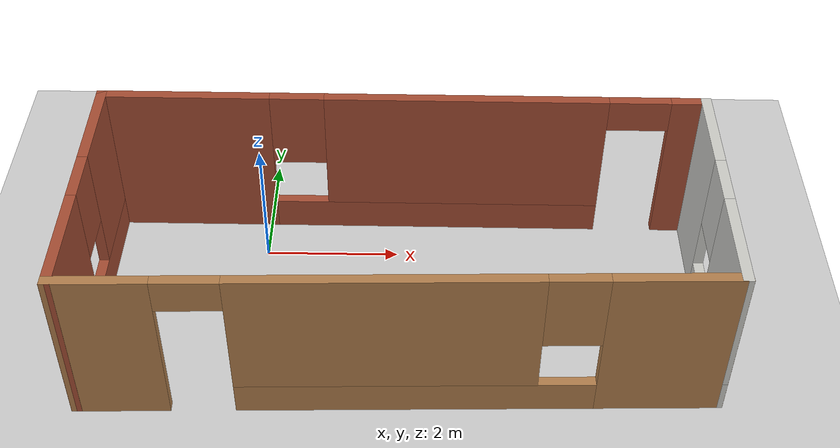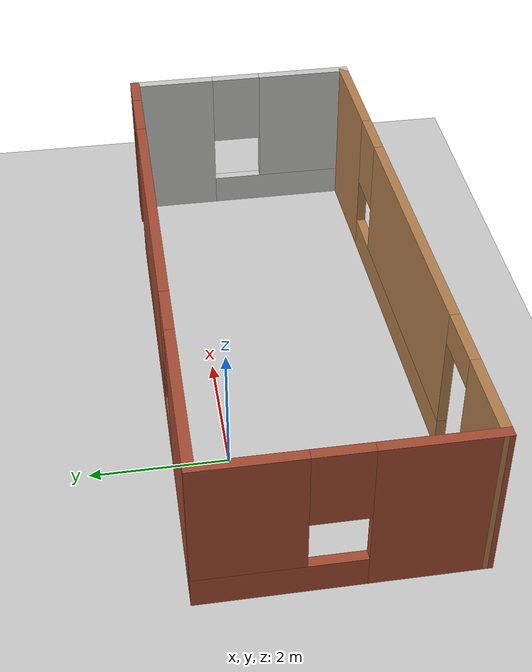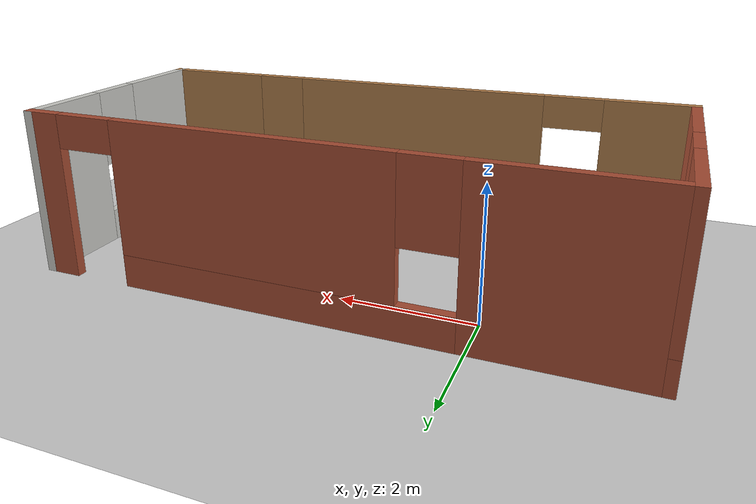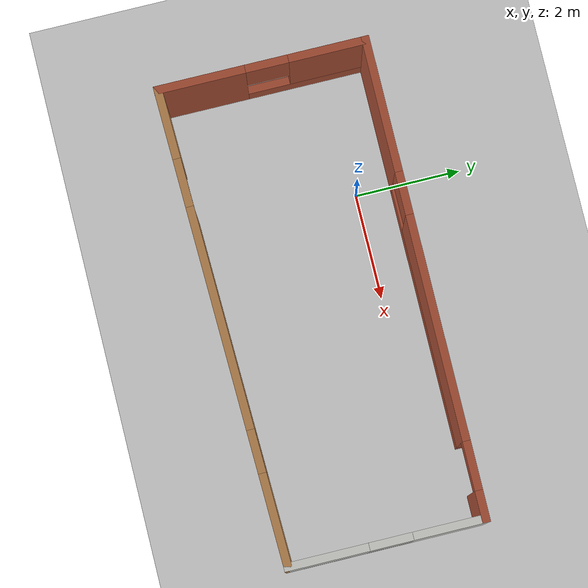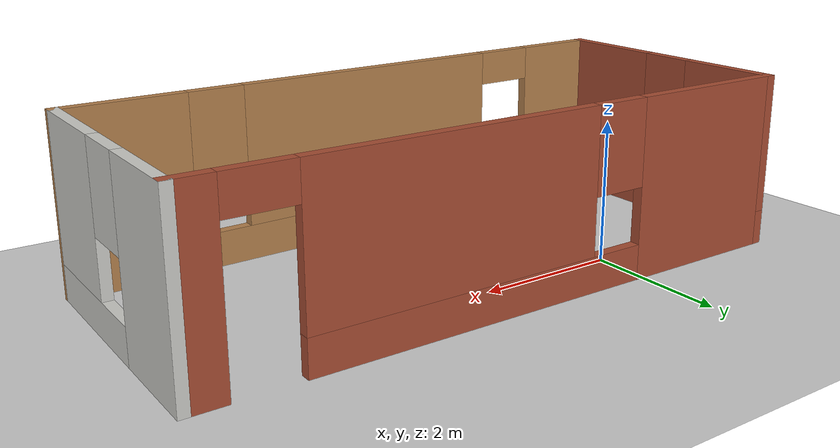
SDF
<sdf version="1.6">
 <world name="default">
  <light name="sun" type="directional">
   <pose>0 0 10 0 -0 0</pose>
   <diffuse>0.8 0.8 0.8 1</diffuse>
   <specular>0.1 0.1 0.1 1</specular>
   <attenuation>
    <range>1000</range>
    <constant>0.9</constant>
    <linear>0.01</linear>
    <quadratic>0.001</quadratic>
   </attenuation>
   <direction>-0.5 0.5 -1</direction>
  </light>
  <model name="ground_plane">
   <static>1</static>
   <link name="link">
    <collision name="collision">
     <geometry><plane><normal>0 0 1</normal><size>100 100</size></plane></geometry>
     <surface><friction><ode><mu>100</mu><mu2>50</mu2></ode></friction></surface>
    </collision>
    <visual name="visual">
     <cast_shadows>0</cast_shadows>
     <geometry><plane><normal>0 0 1</normal><size>100 100</size></plane></geometry>
     <material>
      <script><uri>file://media/materials/scripts/gazebo.material</uri><name>Gazebo/Grey</name></script>
     </material>
    </visual>
   </link>
  </model>
  <gravity>0 0 -9.8</gravity>
  <magnetic_field>6e-06 2.3e-05 -4.2e-05</magnetic_field>
  <atmosphere type="adiabatic"/>
  <physics name="default_physics" default="0" type="ode">
   <max_step_size>0.001</max_step_size>
   <real_time_factor>1</real_time_factor>
   <real_time_update_rate>1000</real_time_update_rate>
  </physics>
  <scene><ambient>0.4 0.4 0.4 1</ambient><background>0.7 0.7 0.7 1</background><shadows>1</shadows></scene>
  <spherical_coordinates>
   <surface_model>EARTH_WGS84</surface_model>
   <latitude_deg>0</latitude_deg>
   <longitude_deg>0</longitude_deg>
   <elevation>0</elevation>
   <heading_deg>0</heading_deg>
  </spherical_coordinates>
  <model name="my_world">
   <pose>2.06667 -1.19975 0 0 -0 0</pose>
   <link name="Wall_0">
    <pose>-4.425 0.001044 0 0 -0 1.5708</pose>
    <visual name="Wall_0_Visual_0">
     <pose>-1.1575 0 1.25 0 -0 0</pose>
     <geometry><box><size>1.685 0.15 2.5</size></box></geometry>
     <material>
      <script><uri>file://media/materials/scripts/gazebo.material</uri><name>Gazebo/Bricks</name></script>
      <ambient>1 1 1 1</ambient>
     </material>
    </visual>
    <collision name="Wall_0_Collision_0">
     <geometry><box><size>1.685 0.15 2.5</size></box></geometry>
     <pose>-1.1575 0 1.25 0 -0 0</pose>
    </collision>
    <visual name="Wall_0_Visual_1">
     <pose>0.8425 0 0.25 0 -0 0</pose>
     <geometry><box><size>2.315 0.15 0.5</size></box></geometry>
     <material>
      <script><uri>file://media/materials/scripts/gazebo.material</uri><name>Gazebo/Bricks</name></script>
      <ambient>1 1 1 1</ambient>
     </material>
    </visual>
    <collision name="Wall_0_Collision_1">
     <geometry><box><size>2.315 0.15 0.5</size></box></geometry>
     <pose>0.8425 0 0.25 0 -0 0</pose>
    </collision>
    <visual name="Wall_0_Visual_2">
     <pose>1.2425 0 1.5 0 -0 0</pose>
     <geometry><box><size>1.515 0.15 2</size></box></geometry>
     <material>
      <script><uri>file://media/materials/scripts/gazebo.material</uri><name>Gazebo/Bricks</name></script>
      <ambient>1 1 1 1</ambient>
     </material>
    </visual>
    <collision name="Wall_0_Collision_2">
     <geometry><box><size>1.515 0.15 2</size></box></geometry>
     <pose>1.2425 0 1.5 0 -0 0</pose>
    </collision>
    <visual name="Wall_0_Visual_3">
     <pose>0.085 0 1.9 0 -0 0</pose>
     <geometry><box><size>0.8 0.15 1.2</size></box></geometry>
     <material>
      <script><uri>file://media/materials/scripts/gazebo.material</uri><name>Gazebo/Bricks</name></script>
      <ambient>1 1 1 1</ambient>
     </material>
    </visual>
    <collision name="Wall_0_Collision_3">
     <geometry><box><size>0.8 0.15 1.2</size></box></geometry>
     <pose>0.085 0 1.9 0 -0 0</pose>
    </collision>
   </link>
   <link name="Wall_1">
    <pose>0 1.92604 0 0 -0 0</pose>
    <visual name="Wall_1_Visual_0">
     <pose>-3.2275 0 1.25 0 -0 0</pose>
     <geometry><box><size>2.545 0.15 2.5</size></box></geometry>
     <material>
      <script><uri>file://media/materials/scripts/gazebo.material</uri><name>Gazebo/Bricks</name></script>
      <ambient>0.996078 0.47451 0.0196078 1</ambient>
     </material>
    </visual>
    <collision name="Wall_1_Collision_0">
     <geometry><box><size>2.545 0.15 2.5</size></box></geometry>
     <pose>-3.2275 0 1.25 0 -0 0</pose>
    </collision>
    <visual name="Wall_1_Visual_1">
     <pose>4.2075 0 1.25 0 -0 0</pose>
     <geometry><box><size>0.585 0.15 2.5</size></box></geometry>
     <material>
      <script><uri>file://media/materials/scripts/gazebo.material</uri><name>Gazebo/Bricks</name></script>
      <ambient>0.996078 0.47451 0.0196078 1</ambient>
     </material>
    </visual>
    <collision name="Wall_1_Collision_1">
     <geometry><box><size>0.585 0.15 2.5</size></box></geometry>
     <pose>4.2075 0 1.25 0 -0 0</pose>
    </collision>
    <visual name="Wall_1_Visual_2">
     <pose>0.53 0 0.25 0 -0 0</pose>
     <geometry><box><size>4.97 0.15 0.5</size></box></geometry>
     <material>
      <script><uri>file://media/materials/scripts/gazebo.material</uri><name>Gazebo/Bricks</name></script>
      <ambient>0.996078 0.47451 0.0196078 1</ambient>
     </material>
    </visual>
    <collision name="Wall_1_Collision_2">
     <geometry><box><size>4.97 0.15 0.5</size></box></geometry>
     <pose>0.53 0 0.25 0 -0 0</pose>
    </collision>
    <visual name="Wall_1_Visual_3">
     <pose>0.93 0 1.5 0 -0 0</pose>
     <geometry><box><size>4.17 0.15 2</size></box></geometry>
     <material>
      <script><uri>file://media/materials/scripts/gazebo.material</uri><name>Gazebo/Bricks</name></script>
      <ambient>0.996078 0.47451 0.0196078 1</ambient>
     </material>
    </visual>
    <collision name="Wall_1_Collision_3">
     <geometry><box><size>4.17 0.15 2</size></box></geometry>
     <pose>0.93 0 1.5 0 -0 0</pose>
    </collision>
    <visual name="Wall_1_Visual_4">
     <pose>-1.555 0 1.9 0 -0 0</pose>
     <geometry><box><size>0.8 0.15 1.2</size></box></geometry>
     <material>
      <script><uri>file://media/materials/scripts/gazebo.material</uri><name>Gazebo/Bricks</name></script>
      <ambient>0.996078 0.47451 0.0196078 1</ambient>
     </material>
    </visual>
    <collision name="Wall_1_Collision_4">
     <geometry><box><size>0.8 0.15 1.2</size></box></geometry>
     <pose>-1.555 0 1.9 0 -0 0</pose>
    </collision>
    <visual name="Wall_1_Visual_5">
     <pose>3.465 0 2.25 0 -0 0</pose>
     <geometry><box><size>0.9 0.15 0.5</size></box></geometry>
     <material>
      <script><uri>file://media/materials/scripts/gazebo.material</uri><name>Gazebo/Bricks</name></script>
      <ambient>0.996078 0.47451 0.0196078 1</ambient>
     </material>
    </visual>
    <collision name="Wall_1_Collision_5">
     <geometry><box><size>0.9 0.15 0.5</size></box></geometry>
     <pose>3.465 0 2.25 0 -0 0</pose>
    </collision>
   </link>
   <link name="Wall_2">
    <pose>4.425 0.126044 0 0 0 -1.5708</pose>
    <visual name="Wall_2_Visual_0">
     <pose>-1.1775 0 1.25 0 -0 0</pose>
     <geometry><box><size>1.395 0.15 2.5</size></box></geometry>
     <material>
      <script><uri>file://media/materials/scripts/gazebo.material</uri><name>Gazebo/CeilingTiled</name></script>
      <ambient>0.996078 0.47451 0.0196078 1</ambient>
     </material>
    </visual>
    <collision name="Wall_2_Collision_0">
     <geometry><box><size>1.395 0.15 2.5</size></box></geometry>
     <pose>-1.1775 0 1.25 0 -0 0</pose>
    </collision>
    <visual name="Wall_2_Visual_1">
     <pose>0.6975 0 0.25 0 -0 0</pose>
     <geometry><box><size>2.355 0.15 0.5</size></box></geometry>
     <material>
      <script><uri>file://media/materials/scripts/gazebo.material</uri><name>Gazebo/CeilingTiled</name></script>
      <ambient>0.996078 0.47451 0.0196078 1</ambient>
     </material>
    </visual>
    <collision name="Wall_2_Collision_1">
     <geometry><box><size>2.355 0.15 0.5</size></box></geometry>
     <pose>0.6975 0 0.25 0 -0 0</pose>
    </collision>
    <visual name="Wall_2_Visual_2">
     <pose>1.0975 0 1.5 0 -0 0</pose>
     <geometry><box><size>1.555 0.15 2</size></box></geometry>
     <material>
      <script><uri>file://media/materials/scripts/gazebo.material</uri><name>Gazebo/CeilingTiled</name></script>
      <ambient>0.996078 0.47451 0.0196078 1</ambient>
     </material>
    </visual>
    <collision name="Wall_2_Collision_2">
     <geometry><box><size>1.555 0.15 2</size></box></geometry>
     <pose>1.0975 0 1.5 0 -0 0</pose>
    </collision>
    <visual name="Wall_2_Visual_3">
     <pose>-0.08 0 1.9 0 -0 0</pose>
     <geometry><box><size>0.8 0.15 1.2</size></box></geometry>
     <material>
      <script><uri>file://media/materials/scripts/gazebo.material</uri><name>Gazebo/CeilingTiled</name></script>
      <ambient>0.996078 0.47451 0.0196078 1</ambient>
     </material>
    </visual>
    <collision name="Wall_2_Collision_3">
     <geometry><box><size>0.8 0.15 1.2</size></box></geometry>
     <pose>-0.08 0 1.9 0 -0 0</pose>
    </collision>
   </link>
   <link name="Wall_3">
    <pose>0 -1.79896 0 0 0 -3.11335</pose>
    <visual name="Wall_3_Visual_0">
     <pose>-3.607 0 1.25 0 -0 0</pose>
     <geometry><box><size>1.78952 0.15 2.5</size></box></geometry>
     <material>
      <script><uri>file://media/materials/scripts/gazebo.material</uri><name>Gazebo/Wood</name></script>
      <ambient>1 1 1 1</ambient>
     </material>
    </visual>
    <collision name="Wall_3_Collision_0">
     <geometry><box><size>1.78952 0.15 2.5</size></box></geometry>
     <pose>-3.607 0 1.25 0 -0 0</pose>
    </collision>
    <visual name="Wall_3_Visual_1">
     <pose>3.81518 0 1.25 0 -0 0</pose>
     <geometry><box><size>1.37317 0.15 2.5</size></box></geometry>
     <material>
      <script><uri>file://media/materials/scripts/gazebo.material</uri><name>Gazebo/Wood</name></script>
      <ambient>1 1 1 1</ambient>
     </material>
    </visual>
    <collision name="Wall_3_Collision_1">
     <geometry><box><size>1.37317 0.15 2.5</size></box></geometry>
     <pose>3.81518 0 1.25 0 -0 0</pose>
    </collision>
    <visual name="Wall_3_Visual_2">
     <pose>-0.241824 0 0.25 0 -0 0</pose>
     <geometry><box><size>4.94083 0.15 0.5</size></box></geometry>
     <material>
      <script><uri>file://media/materials/scripts/gazebo.material</uri><name>Gazebo/Wood</name></script>
      <ambient>1 1 1 1</ambient>
     </material>
    </visual>
    <collision name="Wall_3_Collision_2">
     <geometry><box><size>4.94083 0.15 0.5</size></box></geometry>
     <pose>-0.241824 0 0.25 0 -0 0</pose>
    </collision>
    <visual name="Wall_3_Visual_3">
     <pose>0.158176 0 1.5 0 -0 0</pose>
     <geometry><box><size>4.14083 0.15 2</size></box></geometry>
     <material>
      <script><uri>file://media/materials/scripts/gazebo.material</uri><name>Gazebo/Wood</name></script>
      <ambient>1 1 1 1</ambient>
     </material>
    </visual>
    <collision name="Wall_3_Collision_3">
     <geometry><box><size>4.14083 0.15 2</size></box></geometry>
     <pose>0.158176 0 1.5 0 -0 0</pose>
    </collision>
    <visual name="Wall_3_Visual_4">
     <pose>-2.31224 0 1.9 0 -0 0</pose>
     <geometry><box><size>0.8 0.15 1.2</size></box></geometry>
     <material>
      <script><uri>file://media/materials/scripts/gazebo.material</uri><name>Gazebo/Wood</name></script>
      <ambient>1 1 1 1</ambient>
     </material>
    </visual>
    <collision name="Wall_3_Collision_4">
     <geometry><box><size>0.8 0.15 1.2</size></box></geometry>
     <pose>-2.31224 0 1.9 0 -0 0</pose>
    </collision>
    <visual name="Wall_3_Visual_5">
     <pose>2.67859 0 2.25 0 -0 0</pose>
     <geometry><box><size>0.9 0.15 0.5</size></box></geometry>
     <material>
      <script><uri>file://media/materials/scripts/gazebo.material</uri><name>Gazebo/Wood</name></script>
      <ambient>1 1 1 1</ambient>
     </material>
    </visual>
    <collision name="Wall_3_Collision_5">
     <geometry><box><size>0.9 0.15 0.5</size></box></geometry>
     <pose>2.67859 0 2.25 0 -0 0</pose>
    </collision>
   </link>
   <static>1</static>
  </model>
 </world>
</sdf>
